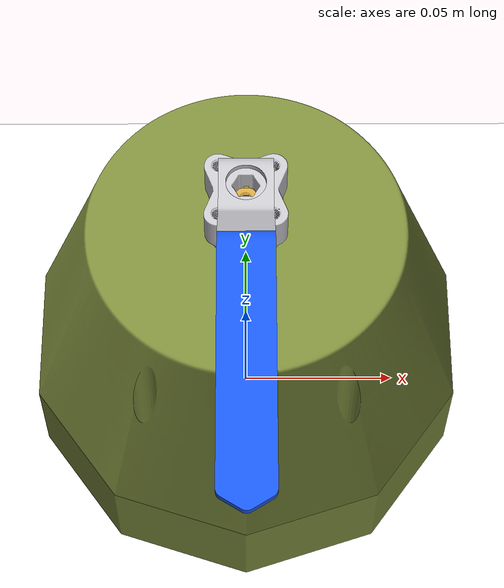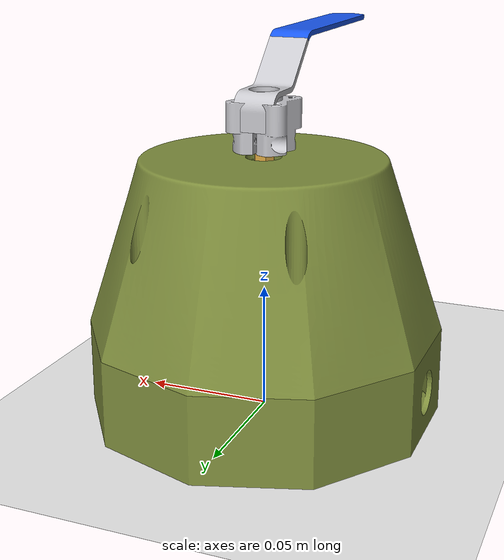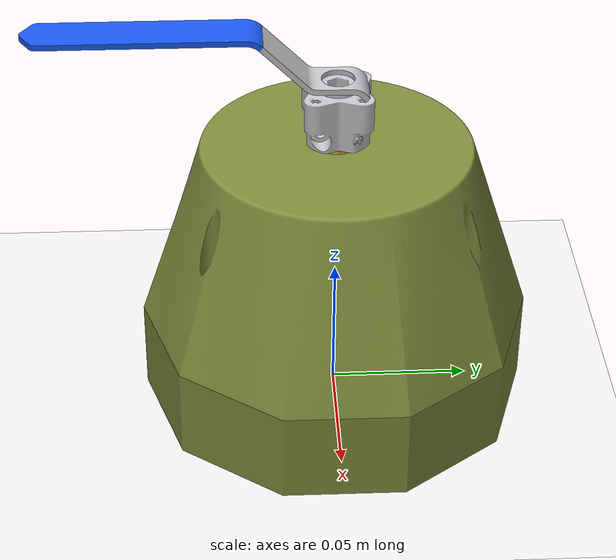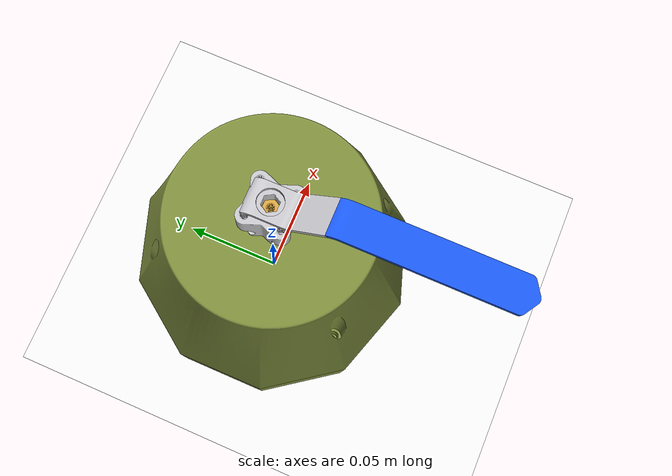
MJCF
<mujoco model="prism_device">
  <compiler angle="degree" coordinate="local" meshdir="../assets/"/>
  <option gravity="0 0 -9.81"/>

  <default>
    <default class="visual">
      <geom type="mesh" contype="0" conaffinity="0" rgba="0.78 0.78 0.8 1"/>
    </default>
    <default class="collision">
      <geom type="mesh" density="1200" rgba="0.2 0.2 0.2 0.08"/>
    </default>
  </default>

  <asset>
    <mesh name="prism_top" file="Top.stl" scale="0.001 0.001 0.001"/>
    <mesh name="prism_bottom" file="Bottom.stl" scale="0.001 0.001 0.001"/>
    <mesh name="prism_shaft_mesh" file="Shaft.stl" scale="0.001 0.001 0.001"/>
    <mesh name="blue_handle_hub" file="blue_handle/gobuilda_rex_hub.stl" scale="0.0254 0.0254 0.0254"/>
    <mesh name="blue_handle_inner" file="blue_handle/handle_inner_bare_metal.stl" scale="0.0254 0.0254 0.0254"/>
    <mesh name="blue_handle_outer" file="blue_handle/handle_outer_blue.stl" scale="0.0254 0.0254 0.0254"/>
  </asset>

  <worldbody>
    <geom name="floor" type="plane" size="2 2 0.1" pos="0 0 0" rgba="0.95 0.95 0.95 1"/>

    <body name="world_axes" pos="0 0 0.0005">
      <geom name="world_x_axis" type="capsule" fromto="0 0 0 0.006 0 0" size="0.00012" rgba="1 0 0 1" contype="0" conaffinity="0" group="4"/>
      <geom name="world_y_axis" type="capsule" fromto="0 0 0 0 0.006 0" size="0.00012" rgba="0 1 0 1" contype="0" conaffinity="0" group="4"/>
      <geom name="world_z_axis" type="capsule" fromto="0 0 0 0 0 0.006" size="0.00012" rgba="0 0 1 1" contype="0" conaffinity="0" group="4"/>
      <site name="world_origin" pos="0 0 0" size="0.00025" rgba="1 1 0 1" group="4"/>
    </body>

    <body name="prism_mount" pos="0 0 0" quat="1 0 0 0">
      <site name="prism_frame_origin" pos="0 0 0" size="0.0002" rgba="0 1 1 1" group="4"/>
      <geom name="prism_x_axis" type="capsule" fromto="0 0 0 0.004 0 0" size="0.00009" rgba="1 0.4 0.4 1" contype="0" conaffinity="0" group="4"/>
      <geom name="prism_y_axis" type="capsule" fromto="0 0 0 0 0.004 0" size="0.00009" rgba="0.4 1 0.4 1" contype="0" conaffinity="0" group="4"/>
      <geom name="prism_z_axis" type="capsule" fromto="0 0 0 0 0 0.004" size="0.00009" rgba="0.4 0.4 1 1" contype="0" conaffinity="0" group="4"/>

      <body name="prism_base">
        <geom name="top_visual" class="visual" mesh="prism_top" rgba="0.50 0.56 0.24 1"/>
        <geom name="bottom_visual" class="visual" mesh="prism_bottom" rgba="0.50 0.56 0.24 1"/>
        <geom name="top_collision" class="collision" mesh="prism_top"/>
        <geom name="bottom_collision" class="collision" mesh="prism_bottom"/>

        <body name="prism_shaft" pos="0 0 0.08">
          <joint name="prism_joint" type="hinge" axis="0 0 1" pos="0 0 0" damping="0.0" frictionloss="0.0"/>
          <geom name="shaft_visual" class="visual" mesh="prism_shaft_mesh" quat="0.70710678 0.70710678 0 0" rgba="0.85 0.65 0.25 1"/>
          <geom name="shaft_collision" class="collision" mesh="prism_shaft_mesh" quat="0.70710678 0.70710678 0 0"/>
          <site name="prism_shaft_axis_origin" pos="0 0 0" size="0.003" rgba="1 0 0 1"/>

          <body name="blue_handle" pos="0 0 0.025">
            <geom name="blue_handle_hub_visual" class="visual" mesh="blue_handle_hub" quat="0.70710678 0.70710678 0 0"/>
            <geom name="blue_handle_inner_visual" class="visual" mesh="blue_handle_inner" quat="0.70710678 0.70710678 0 0"/>
            <geom name="blue_handle_outer_visual" class="visual" mesh="blue_handle_outer" quat="0.70710678 0.70710678 0 0" rgba="0.10 0.35 0.95 1"/>
            <geom name="blue_handle_hub_collision" class="collision" mesh="blue_handle_hub" quat="0.70710678 0.70710678 0 0"/>
            <geom name="blue_handle_inner_collision" class="collision" mesh="blue_handle_inner" quat="0.70710678 0.70710678 0 0"/>
            <geom name="blue_handle_outer_collision" class="collision" mesh="blue_handle_outer" quat="0.70710678 0.70710678 0 0"/>
          </body>
        </body>
      </body>
    </body>
  </worldbody>

  <actuator>
    <general name="prism_motor" joint="prism_joint" ctrlrange="-10 10"/>
  </actuator>
</mujoco>
